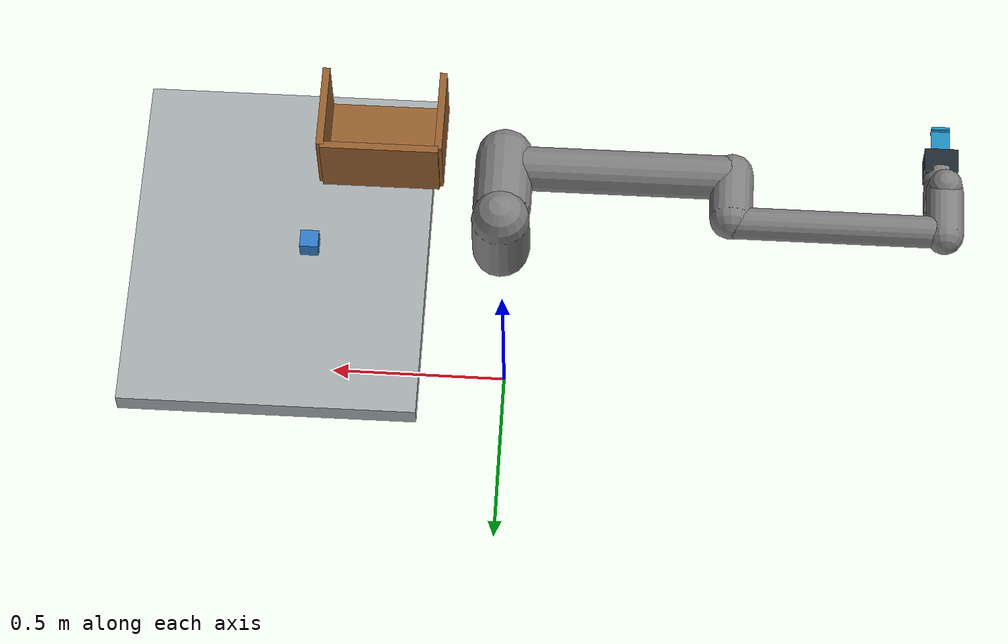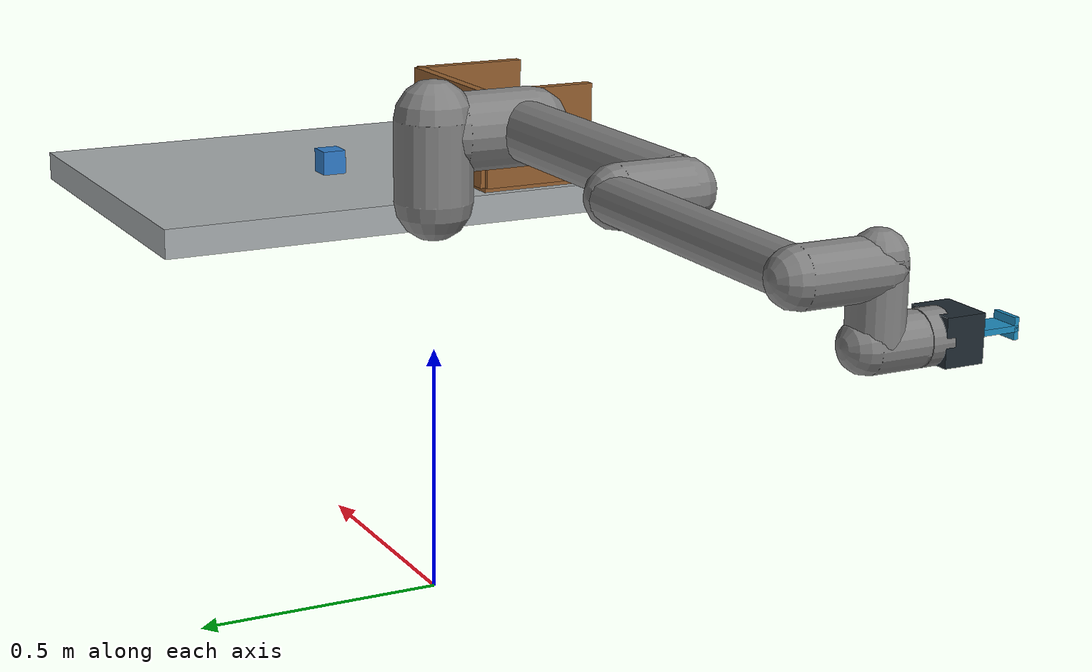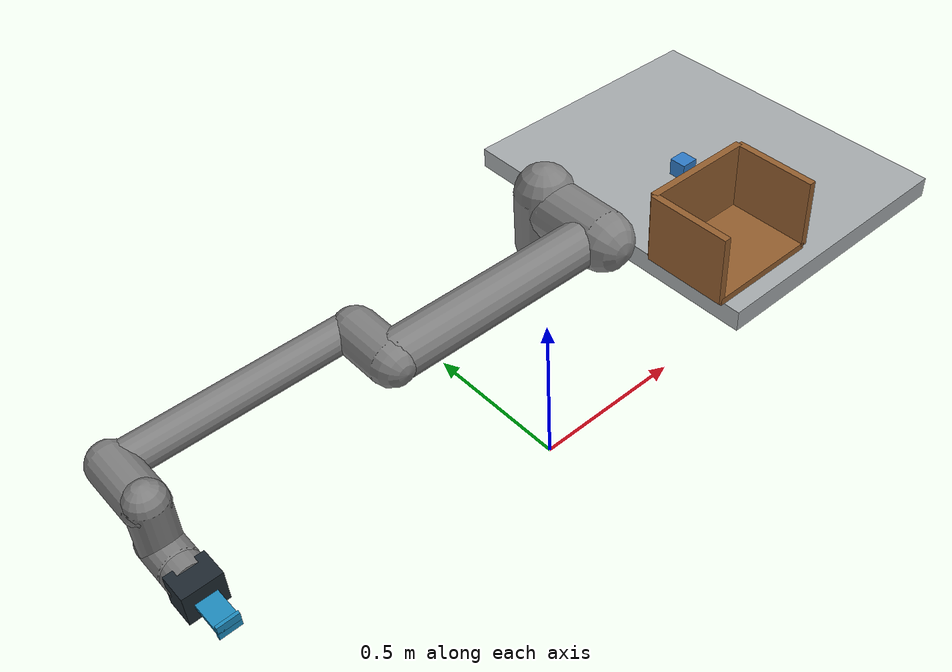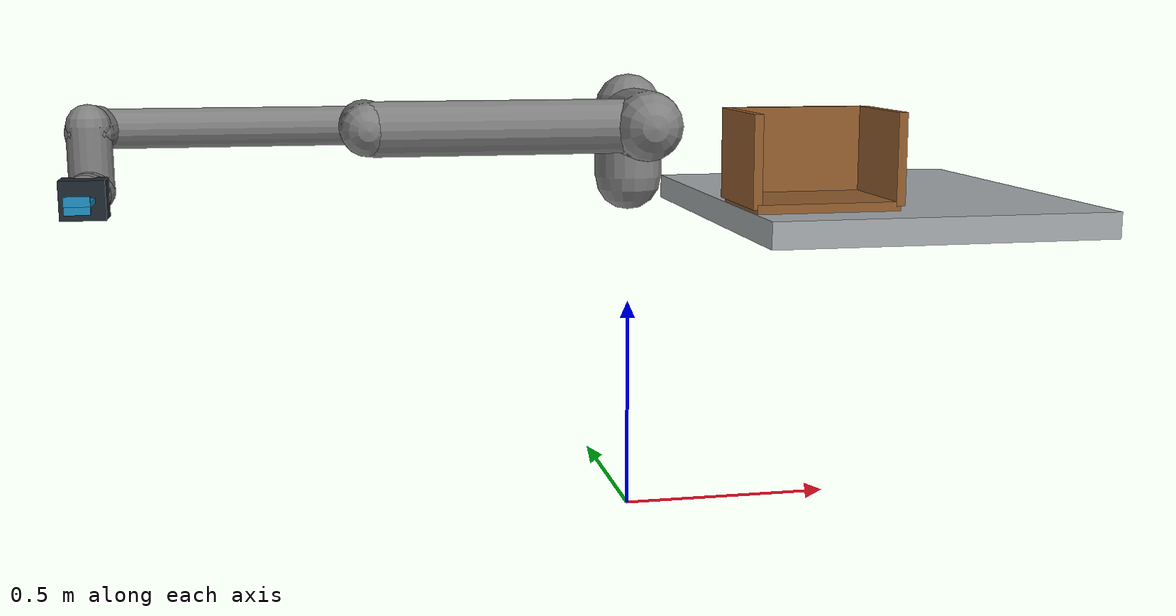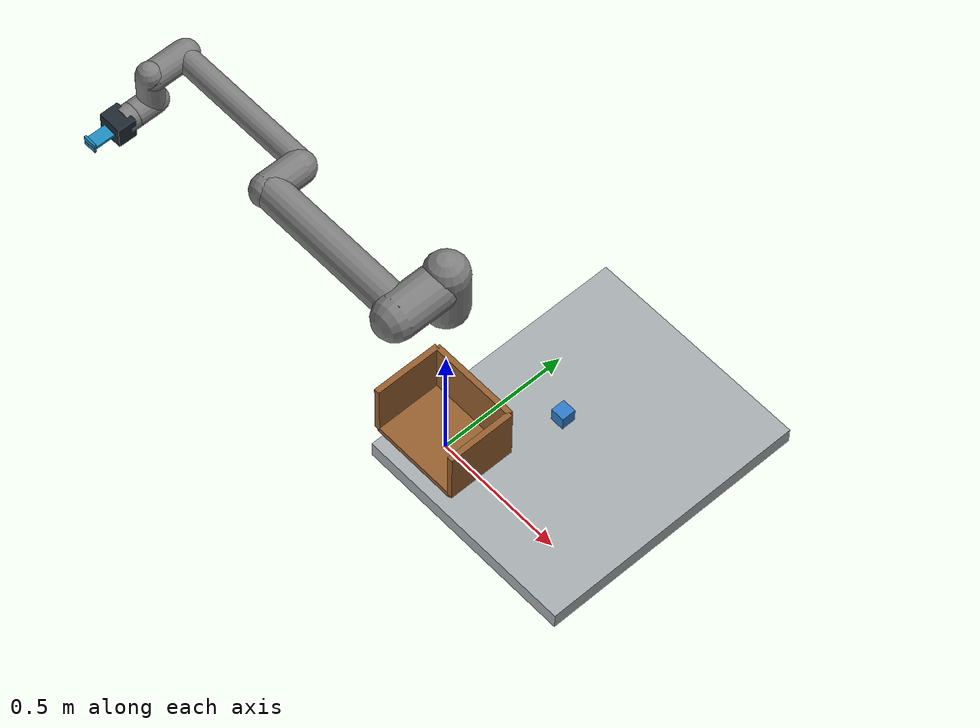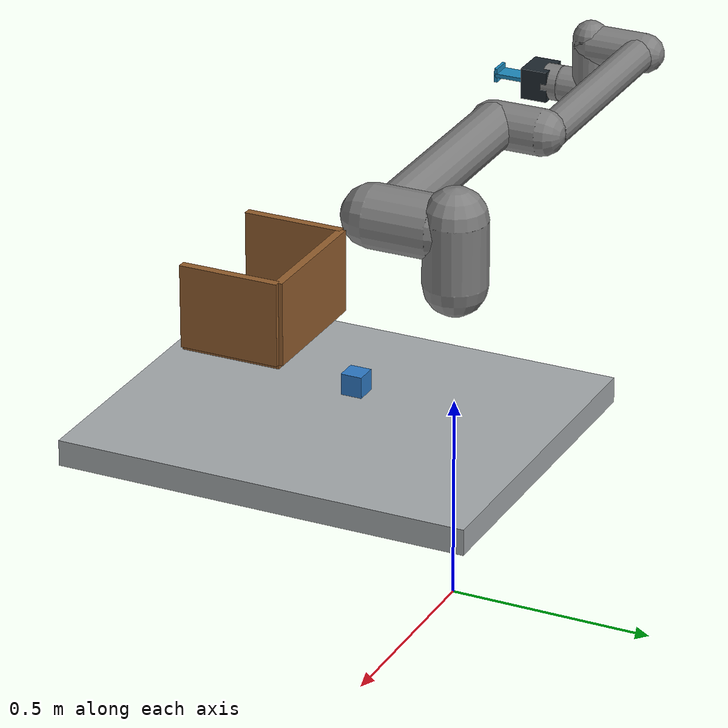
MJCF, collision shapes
<mujoco model="ur10e">
  <compiler angle="radian" meshdir="../../universal_robots_ur10e/assets" autolimits="true"/>

  <option integrator="implicitfast"/>

  <default>
    <default class="ur10e">
      <material specular="0.5" shininess="0.25"/>
      <joint axis="0 1 0" range="-6.28319 6.28319" armature="0.1"/>
      <position ctrlrange="-6.2831 6.2831"/>
      <general biastype="affine" ctrlrange="-6.2831 6.2831" gainprm="5000" biasprm="0 -5000 -500"/>
      <default class="size4">
        <joint damping="10"/>
        <general forcerange="-330 330"/>
      </default>
      <default class="size3">
        <joint damping="5"/>
        <general forcerange="-150 150"/>
        <default class="size3_limited">
          <joint range="-3.1415 3.1415"/>
          <general ctrlrange="-3.1415 3.1415"/>
        </default>
      </default>
      <default class="size2">
        <joint damping="2"/>
        <general forcerange="-56 56"/>
      </default>
      <default class="visual">
        <geom type="mesh" contype="0" conaffinity="0" group="2"/>
      </default>
      <default class="collision">
        <geom type="capsule" group="3"/>
        <default class="eef_collision">
          <geom type="cylinder"/>
        </default>
      </default>
      <site size="0.001" rgba="0.5 0.5 0.5 0.3" group="4"/>
    </default>
  </default>

  <asset>
    <material class="ur10e" name="black" rgba="0.033 0.033 0.033 1"/>
    <material class="ur10e" name="jointgray" rgba="0.278 0.278 0.278 1"/>
    <material class="ur10e" name="linkgray" rgba="0.82 0.82 0.82 1"/>
    <material class="ur10e" name="urblue" rgba="0.49 0.678 0.8 1"/>

    <mesh file="base_0.obj"/>
    <mesh file="base_1.obj"/>
    <mesh file="shoulder_0.obj"/>
    <mesh file="shoulder_1.obj"/>
    <mesh file="shoulder_2.obj"/>
    <mesh file="upperarm_0.obj"/>
    <mesh file="upperarm_1.obj"/>
    <mesh file="upperarm_2.obj"/>
    <mesh file="upperarm_3.obj"/>
    <mesh file="forearm_0.obj"/>
    <mesh file="forearm_1.obj"/>
    <mesh file="forearm_2.obj"/>
    <mesh file="forearm_3.obj"/>
    <mesh file="wrist1_0.obj"/>
    <mesh file="wrist1_1.obj"/>
    <mesh file="wrist1_2.obj"/>
    <mesh file="wrist2_0.obj"/>
    <mesh file="wrist2_1.obj"/>
    <mesh file="wrist2_2.obj"/>
    <mesh file="wrist3.obj"/>
  </asset>

  <visual><global offwidth="1280" offheight="720"/></visual><worldbody>
    <light name="spotlight" mode="targetbodycom" target="wrist_2_link" pos="0 -1 2"/>
    <body name="base" pos="0 0 0.75" quat="0 0 0 -1" childclass="ur10e">
      <inertial mass="4.0" pos="0 0 0" diaginertia="0.0061063308908 0.0061063308908 0.01125"/>
      <geom mesh="base_0" material="black" class="visual"/>
      <geom mesh="base_1" material="jointgray" class="visual"/>
      <body name="shoulder_link" pos="0 0 0.181">
        <inertial pos="0 0 0" mass="7.778" diaginertia="0.0314743 0.0314743 0.0218756"/>
        <joint name="shoulder_pan_joint" class="size4" axis="0 0 1"/>
        <geom mesh="shoulder_0" material="urblue" class="visual"/>
        <geom mesh="shoulder_1" material="black" class="visual"/>
        <geom mesh="shoulder_2" material="jointgray" class="visual"/>
        <geom class="collision" size="0.078 0.08" pos="0 0 -0.05"/>
        <body name="upper_arm_link" pos="0 0.176 0" quat="1 0 1 0">
          <inertial pos="0 0 0.3065" mass="12.93" diaginertia="0.423074 0.423074 0.0363656"/>
          <joint name="shoulder_lift_joint" class="size4"/>
          <geom mesh="upperarm_0" material="black" class="visual"/>
          <geom mesh="upperarm_1" material="jointgray" class="visual"/>
          <geom mesh="upperarm_2" material="urblue" class="visual"/>
          <geom mesh="upperarm_3" material="linkgray" class="visual"/>
          <geom class="collision" pos="0 -0.05 0" quat="1 1 0 0" size="0.078 0.08"/>
          <geom class="collision" size="0.06 0.3" pos="0 0 0.3"/>
          <body name="forearm_link" pos="0 -0.137 0.613">
            <inertial pos="0 0 0.2855" mass="3.87" diaginertia="0.11059 0.11059 0.0108844"/>
            <joint name="elbow_joint" class="size3_limited"/>
            <geom mesh="forearm_0" material="urblue" class="visual"/>
            <geom mesh="forearm_1" material="black" class="visual"/>
            <geom mesh="forearm_2" material="jointgray" class="visual"/>
            <geom mesh="forearm_3" material="linkgray" class="visual"/>
            <geom class="collision" pos="0 0.08 0" quat="1 1 0 0" size="0.058 0.065"/>
            <geom class="collision" size="0.043 0.28" pos="0 0 0.29"/>
            <body name="wrist_1_link" pos="0 0 0.571" quat="1 0 1 0">
              <inertial pos="0 0.135 0" quat="0.5 0.5 -0.5 0.5" mass="1.96"
                diaginertia="0.0055125 0.00510825 0.00510825"/>
              <joint name="wrist_1_joint" class="size2"/>
              <geom mesh="wrist1_0" material="black" class="visual"/>
              <geom mesh="wrist1_1" material="urblue" class="visual"/>
              <geom mesh="wrist1_2" material="jointgray" class="visual"/>
              <geom class="collision" pos="0 0.06 0" quat="1 1 0 0" size="0.05 0.07"/>
              <body name="wrist_2_link" pos="0 0.135 0">
                <inertial pos="0 0 0.12" quat="0.5 0.5 -0.5 0.5" mass="1.96"
                  diaginertia="0.0055125 0.00510825 0.00510825"/>
                <joint name="wrist_2_joint" axis="0 0 1" class="size2"/>
                <geom mesh="wrist2_0" material="black" class="visual"/>
                <geom mesh="wrist2_1" material="urblue" class="visual"/>
                <geom mesh="wrist2_2" material="jointgray" class="visual"/>
                <geom class="collision" size="0.046 0.065" pos="0 0 0.05"/>
                <geom class="collision" pos="0 0.028 0.12" quat="1 1 0 0" size="0.046 0.043"/>
                <body name="wrist_3_link" pos="0 0 0.12">
                  <inertial pos="0 0.092 0" quat="0 1 -1 0" mass="0.202"
                    diaginertia="0.000204525 0.000144346 0.000144346"/>
                  <joint name="wrist_3_joint" class="size2"/>
                  <geom material="linkgray" mesh="wrist3" class="visual"/>
                  <geom class="eef_collision" pos="0 0.097 0" quat="1 1 0 0" size="0.046 0.02"/>
                  <site name="attachment_site" pos="0 0.1 0" quat="-1 1 0 0"/>
                  <body name="tool_body" pos="0 0.1 0" quat="-1 1 0 0">
                    <inertial mass="1.025" pos="0 0 0.055" diaginertia="0.003 0.003 0.002"/>
                    <geom name="tool_palm" type="box" pos="0 0 0.035" size="0.045 0.04 0.035" rgba="0.12 0.16 0.19 1"/>
                    <body name="left_jaw"><joint name="left_jaw_joint" type="slide" axis="0 1 0" range="0.005 0.075" damping="15" armature="0.01" solreflimit="0.002 1"/><geom name="left_pad" type="box" pos="0 0 0.11" size="0.025 0.005 0.04" mass="0.02" condim="4" friction="2.0 0.02 0.001" rgba="0.12 0.55 0.75 1"/><geom name="left_support_lip" type="box" pos="0 -0.008 0.148" size="0.025 0.010 0.004" mass="0.01" friction="1.5 0.01 0.001" rgba="0.12 0.55 0.75 1"/></body>
                    <body name="right_jaw"><joint name="right_jaw_joint" type="slide" axis="0 1 0" range="-0.075 -0.005" damping="15" armature="0.01" solreflimit="0.002 1"/><geom name="right_pad" type="box" pos="0 0 0.11" size="0.025 0.005 0.04" mass="0.02" condim="4" friction="2.0 0.02 0.001" rgba="0.12 0.55 0.75 1"/><geom name="right_support_lip" type="box" pos="0 0.008 0.148" size="0.025 0.010 0.004" mass="0.01" friction="1.5 0.01 0.001" rgba="0.12 0.55 0.75 1"/></body>
                    <site name="grasp_site" pos="0 0 0.11" size="0.005" rgba="0 1 0 1"/>
                  </body>
                </body>
              </body>
            </body>
          </body>
        </body>
      </body>
    </body>
  <geom name="table" type="box" pos="0.60 0 0.72" size="0.40 0.48 0.03" rgba="0.65 0.67 0.68 1"/>
    <body name="parcel" pos="0.52 0 0.78"><freejoint name="parcel_free"/><geom name="parcel" type="box" size="0.025 0.025 0.025" mass="0.1" friction="0.8 0.01 0.001" rgba="0.18 0.48 0.78 1"/></body>
    <body name="carton" pos="0.34 -0.32 0.77"><geom name="box_floor" type="box" size="0.16 0.12 0.01" rgba="0.58 0.37 0.18 1"/><geom name="box_back" type="box" pos="0 0.12 0.10" size="0.16 0.01 0.10" rgba="0.58 0.37 0.18 1"/><geom name="box_left" type="box" pos="-0.16 0 0.10" size="0.01 0.12 0.10" rgba="0.58 0.37 0.18 1"/><geom name="box_right" type="box" pos="0.16 0 0.10" size="0.01 0.12 0.10" rgba="0.58 0.37 0.18 1"/></body>
    <camera name="front_camera" pos="1.45 -1.35 1.35" xyaxes="0.70 0.71 0 -0.35 0.35 0.87"/><camera name="overhead_camera" pos="0.45 0 1.85" xyaxes="1 0 0 0 1 0"/></worldbody>

  <equality><joint name="jaw_symmetry" joint1="left_jaw_joint" joint2="right_jaw_joint" polycoef="0 -1 0 0 0" solref="0.002 1"/></equality>

  <actuator>
    <general class="size4" name="shoulder_pan" joint="shoulder_pan_joint"/>
    <general class="size4" name="shoulder_lift" joint="shoulder_lift_joint"/>
    <general class="size3_limited" name="elbow" joint="elbow_joint"/>
    <general class="size2" name="wrist_1" joint="wrist_1_joint"/>
    <general class="size2" name="wrist_2" joint="wrist_2_joint"/>
    <general class="size2" name="wrist_3" joint="wrist_3_joint"/>
    <position name="left_jaw_actuator" joint="left_jaw_joint" kp="3000" ctrlrange="0.005 0.075" forcerange="-62.5 62.5"/>
    <position name="right_jaw_actuator" joint="right_jaw_joint" kp="3000" ctrlrange="-0.075 -0.005" forcerange="-62.5 62.5"/>
  </actuator>

  <keyframe>
    <key name="home" qpos="-1.5708 -1.5708 1.5708 -1.5708 -1.5708 0" ctrl="-1.5708 -1.5708 1.5708 -1.5708 -1.5708 0"/>
  </keyframe>
</mujoco>
